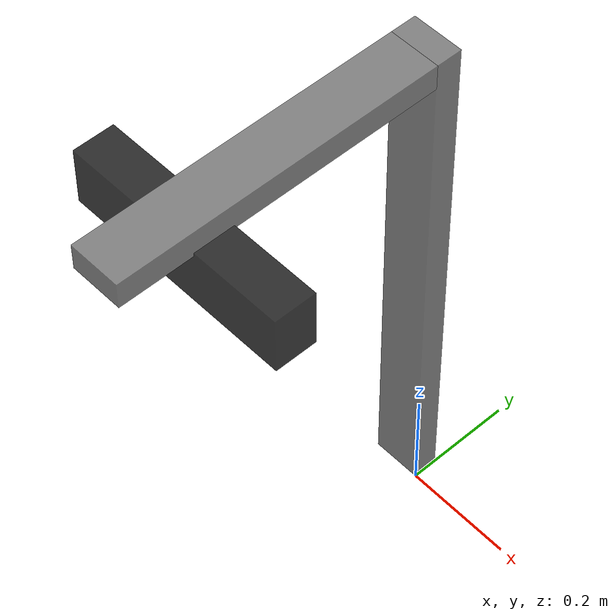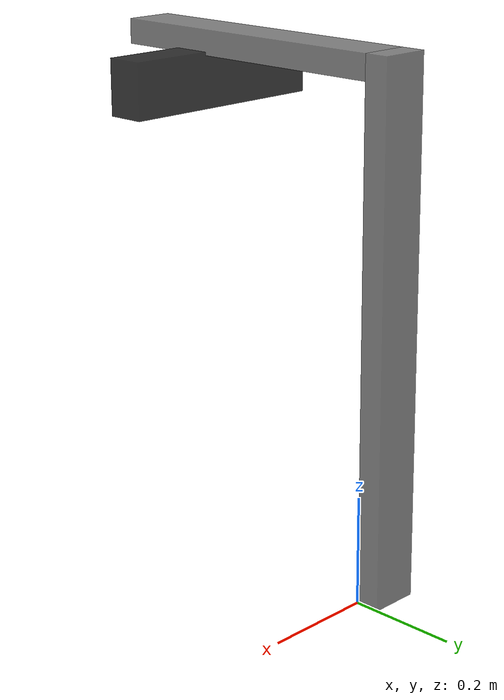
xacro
<?xml version="1.0" ?>
<robot name="wall" xmlns:xacro="http://ros.org/wiki/xacro">

<!-- Definition of camera dimensions  -->
<xacro:property name="cam_x" value="0.40" />
<xacro:property name="cam_y" value="0.07" />
<xacro:property name="cam_z" value="0.10" />

<!-- Definition of camera dimensions  -->
<xacro:property name="hor_bulk_x" value="0.09" />
<xacro:property name="hor_bulk_y" value="0.563" />
<xacro:property name="hor_bulk_z" value="0.045" />

<xacro:property name="vert_bulk_x" value="0.09" />
<xacro:property name="vert_bulk_y" value="0.045" />
<xacro:property name="vert_bulk_z" value="0.965" />

<material name="black">
  <color rgba="0 0 0 0.8"/>
</material>

<material name="gray">
  <color rgba="0.4 0.4 0.4 0.8"/>
</material>

<link name="camera_obstacle_link">
  <visual>
    <geometry>
      <box size="${cam_x} ${cam_y} ${cam_z}"/>
    </geometry>
    <material name="black" />
  </visual>
  <collision>
    <geometry>
      <box size="${cam_x} ${cam_y} ${cam_z}"/>
    </geometry>
  </collision>
</link>

<link name="camera_hor_fixation_obstacle_link">
  <visual>
    <origin xyz="-${hor_bulk_x / 2} ${hor_bulk_y / 2} ${hor_bulk_z / 2}" rpy="0 0 0"/>
    <geometry>
      <box size="${hor_bulk_x} ${hor_bulk_y} ${hor_bulk_z}"/>
    </geometry>
    <material name="gray" />
  </visual>
  <collision>
    <origin xyz="-${hor_bulk_x / 2} ${hor_bulk_y / 2} ${hor_bulk_z / 2}" rpy="0 0 0"/>
    <geometry>
      <box size="${hor_bulk_x} ${hor_bulk_y} ${hor_bulk_z}"/>
    </geometry>
  </collision>
</link>

<link name="camera_vert_fixation_obstacle_link">
  <visual>
    <origin xyz="-${vert_bulk_x / 2} ${vert_bulk_y / 2} ${vert_bulk_z / 2}" rpy="0 0 0"/>
    <geometry>
      <box size="${vert_bulk_x} ${vert_bulk_y} ${vert_bulk_z}"/>
    </geometry>
    <material name="gray" />
  </visual>
  <collision>
    <origin xyz="-${vert_bulk_x / 2} ${vert_bulk_y / 2} ${vert_bulk_z / 2}" rpy="0 0 0"/>
    <geometry>
      <box size="${vert_bulk_x} ${vert_bulk_y} ${vert_bulk_z}"/>
    </geometry>
  </collision>
</link>

<joint name="camera_vert_hor_joint" type="fixed">
  <parent link="camera_vert_fixation_obstacle_link"/>
  <child link="camera_hor_fixation_obstacle_link"/>
  <origin xyz="0.0 -${hor_bulk_y} ${vert_bulk_z - hor_bulk_z}" rpy="0 0 0"/>
</joint>

<joint name="camera_hor_joint" type="fixed">
  <parent link="camera_hor_fixation_obstacle_link"/>
  <child link="camera_obstacle_link"/>
  <origin xyz="-${hor_bulk_x / 2} 0.16 -0.044" rpy="0 0 0"/>
</joint>

</robot>
